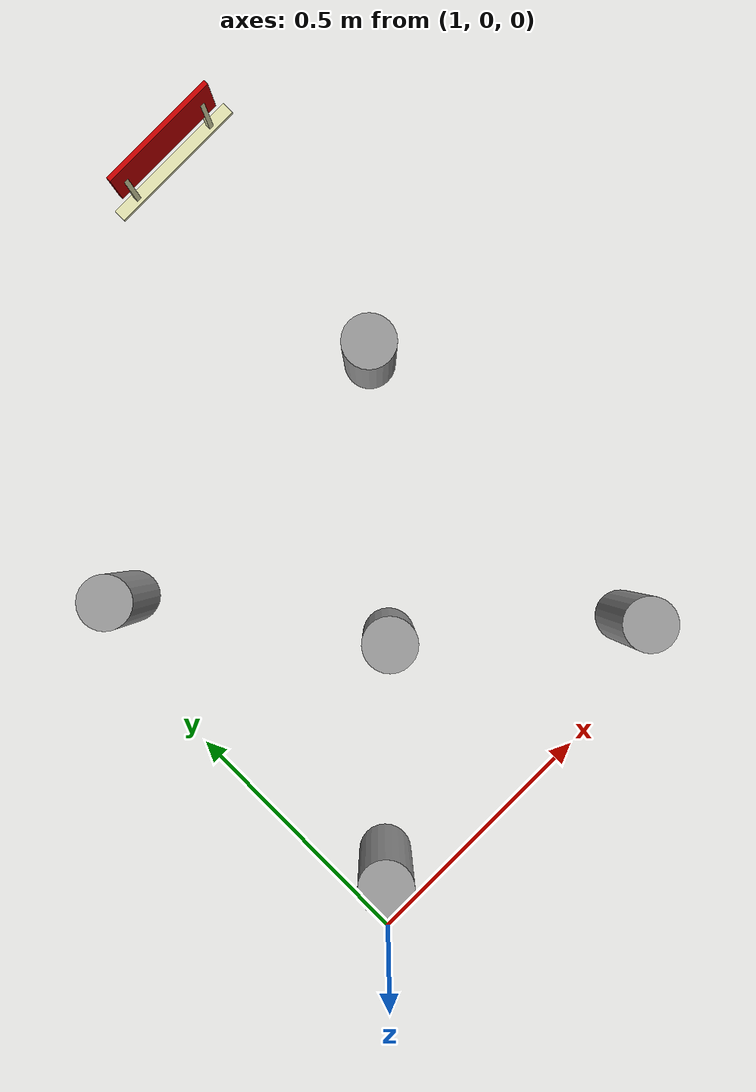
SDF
<sdf version="1.6">
 <world name="default">
  <model name="barrier_1">
   <link name="link">
    <inertial>
     <mass>1</mass>
     <inertia>
      <ixx>0.166667</ixx>
      <ixy>0</ixy>
      <ixz>0</ixz>
      <iyy>0.166667</iyy>
      <iyz>0</iyz>
      <izz>0.166667</izz>
     </inertia>
    </inertial>
    <visual name="visual">
     <geometry><cylinder><radius>0.05</radius><length>0.3</length></cylinder></geometry>
     <material>
      <script><name>Gazebo/Grey</name><uri>file://media/materials/scripts/gazebo.material</uri></script>
      <shader type="pixel"><normal_map>__default__</normal_map></shader>
      <ambient>0.3 0.3 0.3 1</ambient>
      <diffuse>0.7 0.7 0.7 1</diffuse>
      <specular>0.01 0.01 0.01 1</specular>
      <emissive>0 0 0 1</emissive>
     </material>
    </visual>
    <collision name="collision">
     <geometry><cylinder><radius>0.05</radius><length>0.3</length></cylinder></geometry>
     <surface>
      <friction>
       <ode><mu>1</mu><mu2>1</mu2><fdir1>0 0 0</fdir1><slip1>0</slip1><slip2>0</slip2></ode>
       <torsional>
        <coefficient>1</coefficient>
        <patch_radius>0</patch_radius>
        <surface_radius>0</surface_radius>
        <use_patch_radius>1</use_patch_radius>
        <ode><slip>0</slip></ode>
       </torsional>
      </friction>
      <bounce><restitution_coefficient>0</restitution_coefficient><threshold>1e+06</threshold></bounce>
      <contact>
       <collide_without_contact>0</collide_without_contact>
       <collide_without_contact_bitmask>1</collide_without_contact_bitmask>
       <collide_bitmask>1</collide_bitmask>
       <ode>
        <soft_cfm>0</soft_cfm>
        <soft_erp>0.2</soft_erp>
        <kp>1e+13</kp>
        <kd>1</kd>
        <max_vel>0.01</max_vel>
        <min_depth>0</min_depth>
       </ode>
       <bullet>
        <split_impulse>1</split_impulse>
        <split_impulse_penetration_threshold>-0.01</split_impulse_penetration_threshold>
        <soft_cfm>0</soft_cfm>
        <soft_erp>0.2</soft_erp>
        <kp>1e+13</kp>
        <kd>1</kd>
       </bullet>
      </contact>
     </surface>
    </collision>
   </link>
   <static>0</static>
   <pose>1.745246 0.106830 0.149991 0 -0 0</pose>
  </model>
  <model name="barrier_2">
   <link name="link">
    <inertial>
     <mass>1</mass>
     <inertia>
      <ixx>0.166667</ixx>
      <ixy>0</ixy>
      <ixz>0</ixz>
      <iyy>0.166667</iyy>
      <iyz>0</iyz>
      <izz>0.166667</izz>
     </inertia>
    </inertial>
    <visual name="visual">
     <geometry><cylinder><radius>0.05</radius><length>0.3</length></cylinder></geometry>
     <material>
      <script><name>Gazebo/Grey</name><uri>file://media/materials/scripts/gazebo.material</uri></script>
      <shader type="pixel"><normal_map>__default__</normal_map></shader>
      <ambient>0.3 0.3 0.3 1</ambient>
      <diffuse>0.7 0.7 0.7 1</diffuse>
      <specular>0.01 0.01 0.01 1</specular>
      <emissive>0 0 0 1</emissive>
     </material>
    </visual>
    <collision name="collision">
     <geometry><cylinder><radius>0.05</radius><length>0.3</length></cylinder></geometry>
     <surface>
      <friction>
       <ode><mu>1</mu><mu2>1</mu2><fdir1>0 0 0</fdir1><slip1>0</slip1><slip2>0</slip2></ode>
       <torsional>
        <coefficient>1</coefficient>
        <patch_radius>0</patch_radius>
        <surface_radius>0</surface_radius>
        <use_patch_radius>1</use_patch_radius>
        <ode><slip>0</slip></ode>
       </torsional>
      </friction>
      <bounce><restitution_coefficient>0</restitution_coefficient><threshold>1e+06</threshold></bounce>
      <contact>
       <collide_without_contact>0</collide_without_contact>
       <collide_without_contact_bitmask>1</collide_without_contact_bitmask>
       <collide_bitmask>1</collide_bitmask>
       <ode>
        <soft_cfm>0</soft_cfm>
        <soft_erp>0.2</soft_erp>
        <kp>1e+13</kp>
        <kd>1</kd>
        <max_vel>0.01</max_vel>
        <min_depth>0</min_depth>
       </ode>
       <bullet>
        <split_impulse>1</split_impulse>
        <split_impulse_penetration_threshold>-0.01</split_impulse_penetration_threshold>
        <soft_cfm>0</soft_cfm>
        <soft_erp>0.2</soft_erp>
        <kp>1e+13</kp>
        <kd>1</kd>
       </bullet>
      </contact>
     </surface>
    </collision>
   </link>
   <static>0</static>
   <pose>1.1 0.8 0.149991 0 -0 0</pose>
  </model>
  <model name="barrier_5">
   <link name="link">
    <inertial>
     <mass>1</mass>
     <inertia>
      <ixx>0.166667</ixx>
      <ixy>0</ixy>
      <ixz>0</ixz>
      <iyy>0.166667</iyy>
      <iyz>0</iyz>
      <izz>0.166667</izz>
     </inertia>
    </inertial>
    <visual name="visual">
     <geometry><cylinder><radius>0.05</radius><length>0.3</length></cylinder></geometry>
     <material>
      <script><name>Gazebo/Grey</name><uri>file://media/materials/scripts/gazebo.material</uri></script>
      <shader type="pixel"><normal_map>__default__</normal_map></shader>
      <ambient>0.3 0.3 0.3 1</ambient>
      <diffuse>0.7 0.7 0.7 1</diffuse>
      <specular>0.01 0.01 0.01 1</specular>
      <emissive>0 0 0 1</emissive>
     </material>
    </visual>
    <collision name="collision">
     <geometry><cylinder><radius>0.05</radius><length>0.3</length></cylinder></geometry>
     <surface>
      <friction>
       <ode><mu>1</mu><mu2>1</mu2><fdir1>0 0 0</fdir1><slip1>0</slip1><slip2>0</slip2></ode>
       <torsional>
        <coefficient>1</coefficient>
        <patch_radius>0</patch_radius>
        <surface_radius>0</surface_radius>
        <use_patch_radius>1</use_patch_radius>
        <ode><slip>0</slip></ode>
       </torsional>
      </friction>
      <bounce><restitution_coefficient>0</restitution_coefficient><threshold>1e+06</threshold></bounce>
      <contact>
       <collide_without_contact>0</collide_without_contact>
       <collide_without_contact_bitmask>1</collide_without_contact_bitmask>
       <collide_bitmask>1</collide_bitmask>
       <ode>
        <soft_cfm>0</soft_cfm>
        <soft_erp>0.2</soft_erp>
        <kp>1e+13</kp>
        <kd>1</kd>
        <max_vel>0.01</max_vel>
        <min_depth>0</min_depth>
       </ode>
       <bullet>
        <split_impulse>1</split_impulse>
        <split_impulse_penetration_threshold>-0.01</split_impulse_penetration_threshold>
        <soft_cfm>0</soft_cfm>
        <soft_erp>0.2</soft_erp>
        <kp>1e+13</kp>
        <kd>1</kd>
       </bullet>
      </contact>
     </surface>
    </collision>
   </link>
   <static>0</static>
   <pose>1.1 0.106830 0.15 0 -0 1.596</pose>
  </model>
  <model name="barrier_7">
   <link name="link">
    <inertial>
     <mass>1</mass>
     <inertia>
      <ixx>0.166667</ixx>
      <ixy>0</ixy>
      <ixz>0</ixz>
      <iyy>0.166667</iyy>
      <iyz>0</iyz>
      <izz>0.166667</izz>
     </inertia>
    </inertial>
    <visual name="visual">
     <geometry><cylinder><radius>0.05</radius><length>0.3</length></cylinder></geometry>
     <material>
      <script><name>Gazebo/Grey</name><uri>file://media/materials/scripts/gazebo.material</uri></script>
      <shader type="pixel"><normal_map>__default__</normal_map></shader>
      <ambient>0.3 0.3 0.3 1</ambient>
      <diffuse>0.7 0.7 0.7 1</diffuse>
      <specular>0.01 0.01 0.01 1</specular>
      <emissive>0 0 0 1</emissive>
     </material>
    </visual>
    <collision name="collision">
     <geometry><cylinder><radius>0.05</radius><length>0.3</length></cylinder></geometry>
     <surface>
      <friction>
       <ode><mu>1</mu><mu2>1</mu2><fdir1>0 0 0</fdir1><slip1>0</slip1><slip2>0</slip2></ode>
       <torsional>
        <coefficient>1</coefficient>
        <patch_radius>0</patch_radius>
        <surface_radius>0</surface_radius>
        <use_patch_radius>1</use_patch_radius>
        <ode><slip>0</slip></ode>
       </torsional>
      </friction>
      <bounce><restitution_coefficient>0</restitution_coefficient><threshold>1e+06</threshold></bounce>
      <contact>
       <collide_without_contact>0</collide_without_contact>
       <collide_without_contact_bitmask>1</collide_without_contact_bitmask>
       <collide_bitmask>1</collide_bitmask>
       <ode>
        <soft_cfm>0</soft_cfm>
        <soft_erp>0.2</soft_erp>
        <kp>1e+13</kp>
        <kd>1</kd>
        <max_vel>0.01</max_vel>
        <min_depth>0</min_depth>
       </ode>
       <bullet>
        <split_impulse>1</split_impulse>
        <split_impulse_penetration_threshold>-0.01</split_impulse_penetration_threshold>
        <soft_cfm>0</soft_cfm>
        <soft_erp>0.2</soft_erp>
        <kp>1e+13</kp>
        <kd>1</kd>
       </bullet>
      </contact>
     </surface>
    </collision>
   </link>
   <static>0</static>
   <pose>1.4 0.4 0.15 0 -0 1.596</pose>
  </model>
  <model name="barrier_6">
   <link name="link">
    <inertial>
     <mass>1</mass>
     <inertia>
      <ixx>0.166667</ixx>
      <ixy>0</ixy>
      <ixz>0</ixz>
      <iyy>0.166667</iyy>
      <iyz>0</iyz>
      <izz>0.166667</izz>
     </inertia>
    </inertial>
    <visual name="visual">
     <geometry><cylinder><radius>0.05</radius><length>0.3</length></cylinder></geometry>
     <material>
      <script><name>Gazebo/Grey</name><uri>file://media/materials/scripts/gazebo.material</uri></script>
      <shader type="pixel"><normal_map>__default__</normal_map></shader>
      <ambient>0.3 0.3 0.3 1</ambient>
      <diffuse>0.7 0.7 0.7 1</diffuse>
      <specular>0.01 0.01 0.01 1</specular>
      <emissive>0 0 0 1</emissive>
     </material>
    </visual>
    <collision name="collision">
     <geometry><cylinder><radius>0.05</radius><length>0.3</length></cylinder></geometry>
     <surface>
      <friction>
       <ode><mu>1</mu><mu2>1</mu2><fdir1>0 0 0</fdir1><slip1>0</slip1><slip2>0</slip2></ode>
       <torsional>
        <coefficient>1</coefficient>
        <patch_radius>0</patch_radius>
        <surface_radius>0</surface_radius>
        <use_patch_radius>1</use_patch_radius>
        <ode><slip>0</slip></ode>
       </torsional>
      </friction>
      <bounce><restitution_coefficient>0</restitution_coefficient><threshold>1e+06</threshold></bounce>
      <contact>
       <collide_without_contact>0</collide_without_contact>
       <collide_without_contact_bitmask>1</collide_without_contact_bitmask>
       <collide_bitmask>1</collide_bitmask>
       <ode>
        <soft_cfm>0</soft_cfm>
        <soft_erp>0.2</soft_erp>
        <kp>1e+13</kp>
        <kd>1</kd>
        <max_vel>0.01</max_vel>
        <min_depth>0</min_depth>
       </ode>
       <bullet>
        <split_impulse>1</split_impulse>
        <split_impulse_penetration_threshold>-0.01</split_impulse_penetration_threshold>
        <soft_cfm>0</soft_cfm>
        <soft_erp>0.2</soft_erp>
        <kp>1e+13</kp>
        <kd>1</kd>
       </bullet>
      </contact>
     </surface>
    </collision>
   </link>
   <static>0</static>
   <pose>1.745246 0.8 0.149991 0 -0 0</pose>
  </model>
  <model name="barriere_design2">
   <pose>1.75 1.35 0.0 0 -0 3.15</pose>
   <static>true</static>
   <link name="barriere">
    <visual name="base_plate">
     <pose>0 0 0.005 0 0 0</pose>
     <geometry><box><size>0.3 0.025 0.01</size></box></geometry>
     <material><ambient>0.8 0.8 0.6 1</ambient><diffuse>0.9 0.9 0.7 1</diffuse></material>
    </visual>
    <visual name="central_panel">
     <pose>0 0 0.15 0 0 0</pose>
     <geometry><box><size>0.25 0.01 0.125</size></box></geometry>
     <material><ambient>0.5 0 0 1</ambient><diffuse>0.8 0 0 1</diffuse></material>
    </visual>
    <visual name="left_rod">
     <pose>-0.1 0 0.075 0 0 0</pose>
     <geometry><box><size>0.01 0.01 0.15</size></box></geometry>
     <material><ambient>0.9 0.9 0.7 1</ambient></material>
    </visual>
    <visual name="right_rod">
     <pose>0.1 0 0.075 0 0 0</pose>
     <geometry><box><size>0.01 0.01 0.15</size></box></geometry>
     <material><ambient>0.9 0.9 0.7 1</ambient></material>
    </visual>
   </link>
  </model>
 </world>
</sdf>
